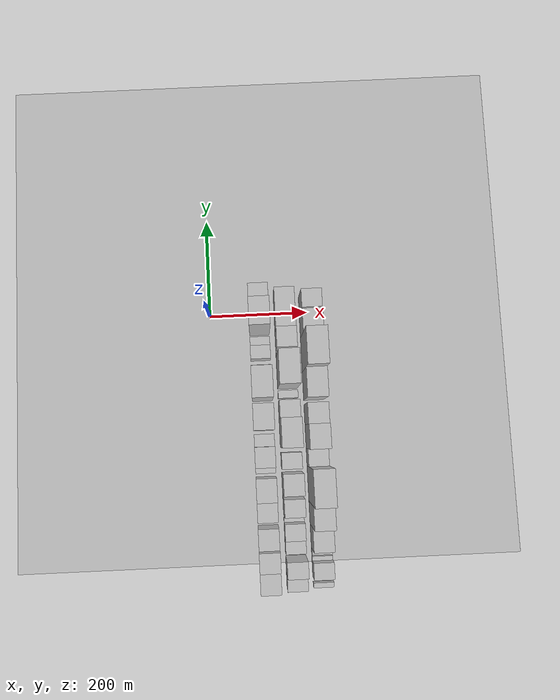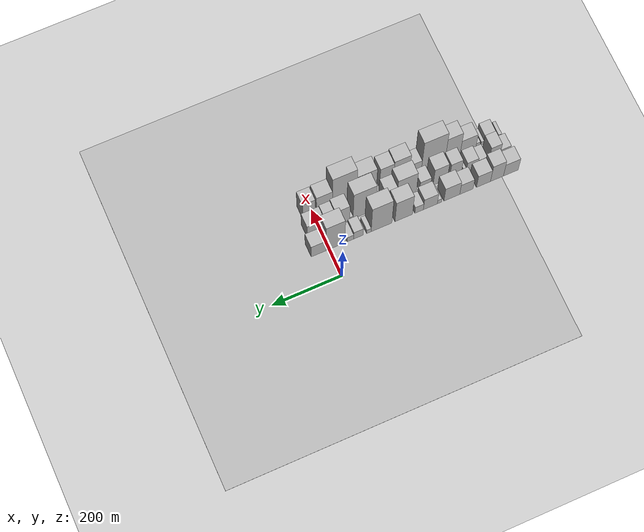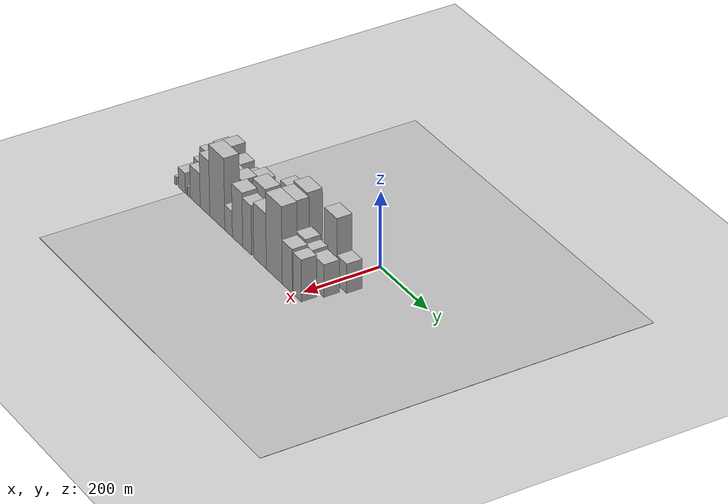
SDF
<sdf version="1.6">
 <world name="default">
  <include><name>ground_plane_1</name><uri>model://HANNAS_ground_plane</uri></include>
  <include>
   <name>ground_plane_2</name>
   <uri>model://HANNAS_ground_plane</uri>
   <pose>100 0 0  0 0 0</pose>
  </include>
  <model name="building_1">
   <static>1</static>
   <pose>100.0000 -526.1982 0 0.000000 0.000000 0.000000</pose>
   <link name="link">
    <pose>0 0 40.50 0 0 0</pose>
    <collision name="collision"><geometry><box><size>40.0000 43.6035 81.0000</size></box></geometry></collision>
    <visual name="visual">
     <cast_shadows>0</cast_shadows>
     <geometry><box><size>40.0000 43.6035 81.0000</size></box></geometry>
     <material>
      <script>
       <uri>model://HANNAS_wall/materials/scripts</uri>
       <uri>model://HANNAS_wall/materials/textures</uri>
       <name>vrc/HANNAS_wall</name>
      </script>
     </material>
    </visual>
   </link>
  </model>
  <model name="building_2">
   <static>1</static>
   <pose>100.0000 -485.3963 0 0.000000 0.000000 0.000000</pose>
   <link name="link">
    <pose>0 0 54.00 0 0 0</pose>
    <collision name="collision"><geometry><box><size>40.0000 38.0005 108.0000</size></box></geometry></collision>
    <visual name="visual">
     <cast_shadows>0</cast_shadows>
     <geometry><box><size>40.0000 38.0005 108.0000</size></box></geometry>
     <material>
      <script>
       <uri>model://HANNAS_wall/materials/scripts</uri>
       <uri>model://HANNAS_wall/materials/textures</uri>
       <name>vrc/HANNAS_wall</name>
      </script>
     </material>
    </visual>
   </link>
  </model>
  <model name="building_3">
   <static>1</static>
   <pose>100.0000 -445.8924 0 0.000000 0.000000 0.000000</pose>
   <link name="link">
    <pose>0 0 40.50 0 0 0</pose>
    <collision name="collision"><geometry><box><size>40.0000 41.0073 81.0000</size></box></geometry></collision>
    <visual name="visual">
     <cast_shadows>0</cast_shadows>
     <geometry><box><size>40.0000 41.0073 81.0000</size></box></geometry>
     <material>
      <script>
       <uri>model://HANNAS_wall/materials/scripts</uri>
       <uri>model://HANNAS_wall/materials/textures</uri>
       <name>vrc/HANNAS_wall</name>
      </script>
     </material>
    </visual>
   </link>
  </model>
  <model name="building_4">
   <static>1</static>
   <pose>100.0000 -395.8718 0 0.000000 0.000000 0.000000</pose>
   <link name="link">
    <pose>0 0 34.50 0 0 0</pose>
    <collision name="collision"><geometry><box><size>40.0000 39.0338 69.0000</size></box></geometry></collision>
    <visual name="visual">
     <cast_shadows>0</cast_shadows>
     <geometry><box><size>40.0000 39.0338 69.0000</size></box></geometry>
     <material>
      <script>
       <uri>model://HANNAS_wall/materials/scripts</uri>
       <uri>model://HANNAS_wall/materials/textures</uri>
       <name>vrc/HANNAS_wall</name>
      </script>
     </material>
    </visual>
   </link>
  </model>
  <model name="building_5">
   <static>1</static>
   <pose>100.0000 -353.2486 0 0.000000 0.000000 0.000000</pose>
   <link name="link">
    <pose>0 0 45.00 0 0 0</pose>
    <collision name="collision"><geometry><box><size>40.0000 46.2126 90.0000</size></box></geometry></collision>
    <visual name="visual">
     <cast_shadows>0</cast_shadows>
     <geometry><box><size>40.0000 46.2126 90.0000</size></box></geometry>
     <material>
      <script>
       <uri>model://HANNAS_wall/materials/scripts</uri>
       <uri>model://HANNAS_wall/materials/textures</uri>
       <name>vrc/HANNAS_wall</name>
      </script>
     </material>
    </visual>
   </link>
  </model>
  <model name="building_6">
   <static>1</static>
   <pose>100.0000 -317.0287 0 0.000000 0.000000 0.000000</pose>
   <link name="link">
    <pose>0 0 13.50 0 0 0</pose>
    <collision name="collision"><geometry><box><size>40.0000 12.2272 27.0000</size></box></geometry></collision>
    <visual name="visual">
     <cast_shadows>0</cast_shadows>
     <geometry><box><size>40.0000 12.2272 27.0000</size></box></geometry>
     <material>
      <script>
       <uri>model://HANNAS_wall/materials/scripts</uri>
       <uri>model://HANNAS_wall/materials/textures</uri>
       <name>vrc/HANNAS_wall</name>
      </script>
     </material>
    </visual>
   </link>
  </model>
  <model name="building_7">
   <static>1</static>
   <pose>100.0000 -290.6172 0 0.000000 0.000000 0.000000</pose>
   <link name="link">
    <pose>0 0 37.50 0 0 0</pose>
    <collision name="collision"><geometry><box><size>40.0000 40.5959 75.0000</size></box></geometry></collision>
    <visual name="visual">
     <cast_shadows>0</cast_shadows>
     <geometry><box><size>40.0000 40.5959 75.0000</size></box></geometry>
     <material>
      <script>
       <uri>model://HANNAS_wall/materials/scripts</uri>
       <uri>model://HANNAS_wall/materials/textures</uri>
       <name>vrc/HANNAS_wall</name>
      </script>
     </material>
    </visual>
   </link>
  </model>
  <model name="building_8">
   <static>1</static>
   <pose>100.0000 -257.9025 0 0.000000 0.000000 0.000000</pose>
   <link name="link">
    <pose>0 0 22.50 0 0 0</pose>
    <collision name="collision"><geometry><box><size>40.0000 24.8334 45.0000</size></box></geometry></collision>
    <visual name="visual">
     <cast_shadows>0</cast_shadows>
     <geometry><box><size>40.0000 24.8334 45.0000</size></box></geometry>
     <material>
      <script>
       <uri>model://HANNAS_wall/materials/scripts</uri>
       <uri>model://HANNAS_wall/materials/textures</uri>
       <name>vrc/HANNAS_wall</name>
      </script>
     </material>
    </visual>
   </link>
  </model>
  <model name="building_9">
   <static>1</static>
   <pose>100.0000 -213.2103 0 0.000000 0.000000 0.000000</pose>
   <link name="link">
    <pose>0 0 70.50 0 0 0</pose>
    <collision name="collision"><geometry><box><size>40.0000 50.5510 141.0000</size></box></geometry></collision>
    <visual name="visual">
     <cast_shadows>0</cast_shadows>
     <geometry><box><size>40.0000 50.5510 141.0000</size></box></geometry>
     <material>
      <script>
       <uri>model://HANNAS_wall/materials/scripts</uri>
       <uri>model://HANNAS_wall/materials/textures</uri>
       <name>vrc/HANNAS_wall</name>
      </script>
     </material>
    </visual>
   </link>
  </model>
  <model name="building_10">
   <static>1</static>
   <pose>100.0000 -149.0451 0 0.000000 0.000000 0.000000</pose>
   <link name="link">
    <pose>0 0 85.50 0 0 0</pose>
    <collision name="collision"><geometry><box><size>40.0000 59.7794 171.0000</size></box></geometry></collision>
    <visual name="visual">
     <cast_shadows>0</cast_shadows>
     <geometry><box><size>40.0000 59.7794 171.0000</size></box></geometry>
     <material>
      <script>
       <uri>model://HANNAS_wall/materials/scripts</uri>
       <uri>model://HANNAS_wall/materials/textures</uri>
       <name>vrc/HANNAS_wall</name>
      </script>
     </material>
    </visual>
   </link>
  </model>
  <model name="building_11">
   <static>1</static>
   <pose>100.0000 -112.6916 0 0.000000 0.000000 0.000000</pose>
   <link name="link">
    <pose>0 0 13.50 0 0 0</pose>
    <collision name="collision"><geometry><box><size>40.0000 12.9276 27.0000</size></box></geometry></collision>
    <visual name="visual">
     <cast_shadows>0</cast_shadows>
     <geometry><box><size>40.0000 12.9276 27.0000</size></box></geometry>
     <material>
      <script>
       <uri>model://HANNAS_wall/materials/scripts</uri>
       <uri>model://HANNAS_wall/materials/textures</uri>
       <name>vrc/HANNAS_wall</name>
      </script>
     </material>
    </visual>
   </link>
  </model>
  <model name="building_12">
   <static>1</static>
   <pose>100.0000 -82.6080 0 0.000000 0.000000 0.000000</pose>
   <link name="link">
    <pose>0 0 25.50 0 0 0</pose>
    <collision name="collision"><geometry><box><size>40.0000 27.2396 51.0000</size></box></geometry></collision>
    <visual name="visual">
     <cast_shadows>0</cast_shadows>
     <geometry><box><size>40.0000 27.2396 51.0000</size></box></geometry>
     <material>
      <script>
       <uri>model://HANNAS_wall/materials/scripts</uri>
       <uri>model://HANNAS_wall/materials/textures</uri>
       <name>vrc/HANNAS_wall</name>
      </script>
     </material>
    </visual>
   </link>
  </model>
  <model name="building_13">
   <static>1</static>
   <pose>100.0000 -59.3566 0 0.000000 0.000000 0.000000</pose>
   <link name="link">
    <pose>0 0 16.50 0 0 0</pose>
    <collision name="collision"><geometry><box><size>40.0000 19.2632 33.0000</size></box></geometry></collision>
    <visual name="visual">
     <cast_shadows>0</cast_shadows>
     <geometry><box><size>40.0000 19.2632 33.0000</size></box></geometry>
     <material>
      <script>
       <uri>model://HANNAS_wall/materials/scripts</uri>
       <uri>model://HANNAS_wall/materials/textures</uri>
       <name>vrc/HANNAS_wall</name>
      </script>
     </material>
    </visual>
   </link>
  </model>
  <model name="building_14">
   <static>1</static>
   <pose>100.0000 -16.7915 0 0.000000 0.000000 0.000000</pose>
   <link name="link">
    <pose>0 0 87.00 0 0 0</pose>
    <collision name="collision"><geometry><box><size>40.0000 53.8670 174.0000</size></box></geometry></collision>
    <visual name="visual">
     <cast_shadows>0</cast_shadows>
     <geometry><box><size>40.0000 53.8670 174.0000</size></box></geometry>
     <material>
      <script>
       <uri>model://HANNAS_wall/materials/scripts</uri>
       <uri>model://HANNAS_wall/materials/textures</uri>
       <name>vrc/HANNAS_wall</name>
      </script>
     </material>
    </visual>
   </link>
  </model>
  <model name="building_15">
   <static>1</static>
   <pose>100.0000 31.6041 0 0.000000 0.000000 0.000000</pose>
   <link name="link">
    <pose>0 0 39.00 0 0 0</pose>
    <collision name="collision"><geometry><box><size>40.0000 42.9242 78.0000</size></box></geometry></collision>
    <visual name="visual">
     <cast_shadows>0</cast_shadows>
     <geometry><box><size>40.0000 42.9242 78.0000</size></box></geometry>
     <material>
      <script>
       <uri>model://HANNAS_wall/materials/scripts</uri>
       <uri>model://HANNAS_wall/materials/textures</uri>
       <name>vrc/HANNAS_wall</name>
      </script>
     </material>
    </visual>
   </link>
  </model>
  <model name="building_31">
   <static>1</static>
   <pose>152.0000 -532.8554 0 0.000000 0.000000 0.000000</pose>
   <link name="link">
    <pose>0 0 27.00 0 0 0</pose>
    <collision name="collision"><geometry><box><size>40.0000 30.2892 54.0000</size></box></geometry></collision>
    <visual name="visual">
     <cast_shadows>0</cast_shadows>
     <geometry><box><size>40.0000 30.2892 54.0000</size></box></geometry>
     <material>
      <script>
       <uri>model://HANNAS_wall/materials/scripts</uri>
       <uri>model://HANNAS_wall/materials/textures</uri>
       <name>vrc/HANNAS_wall</name>
      </script>
     </material>
    </visual>
   </link>
  </model>
  <model name="building_32">
   <static>1</static>
   <pose>152.0000 -502.0154 0 0.000000 0.000000 0.000000</pose>
   <link name="link">
    <pose>0 0 49.50 0 0 0</pose>
    <collision name="collision"><geometry><box><size>40.0000 31.3909 99.0000</size></box></geometry></collision>
    <visual name="visual">
     <cast_shadows>0</cast_shadows>
     <geometry><box><size>40.0000 31.3909 99.0000</size></box></geometry>
     <material>
      <script>
       <uri>model://HANNAS_wall/materials/scripts</uri>
       <uri>model://HANNAS_wall/materials/textures</uri>
       <name>vrc/HANNAS_wall</name>
      </script>
     </material>
    </visual>
   </link>
  </model>
  <model name="building_33">
   <static>1</static>
   <pose>152.0000 -466.1909 0 0.000000 0.000000 0.000000</pose>
   <link name="link">
    <pose>0 0 22.50 0 0 0</pose>
    <collision name="collision"><geometry><box><size>40.0000 26.2582 45.0000</size></box></geometry></collision>
    <visual name="visual">
     <cast_shadows>0</cast_shadows>
     <geometry><box><size>40.0000 26.2582 45.0000</size></box></geometry>
     <material>
      <script>
       <uri>model://HANNAS_wall/materials/scripts</uri>
       <uri>model://HANNAS_wall/materials/textures</uri>
       <name>vrc/HANNAS_wall</name>
      </script>
     </material>
    </visual>
   </link>
  </model>
  <model name="building_34">
   <static>1</static>
   <pose>152.0000 -436.7040 0 0.000000 0.000000 0.000000</pose>
   <link name="link">
    <pose>0 0 30.00 0 0 0</pose>
    <collision name="collision"><geometry><box><size>40.0000 32.7156 60.0000</size></box></geometry></collision>
    <visual name="visual">
     <cast_shadows>0</cast_shadows>
     <geometry><box><size>40.0000 32.7156 60.0000</size></box></geometry>
     <material>
      <script>
       <uri>model://HANNAS_wall/materials/scripts</uri>
       <uri>model://HANNAS_wall/materials/textures</uri>
       <name>vrc/HANNAS_wall</name>
      </script>
     </material>
    </visual>
   </link>
  </model>
  <model name="building_35">
   <static>1</static>
   <pose>152.0000 -416.1719 0 0.000000 0.000000 0.000000</pose>
   <link name="link">
    <pose>0 0 9.00 0 0 0</pose>
    <collision name="collision"><geometry><box><size>40.0000 8.3486 18.0000</size></box></geometry></collision>
    <visual name="visual">
     <cast_shadows>0</cast_shadows>
     <geometry><box><size>40.0000 8.3486 18.0000</size></box></geometry>
     <material>
      <script>
       <uri>model://HANNAS_wall/materials/scripts</uri>
       <uri>model://HANNAS_wall/materials/textures</uri>
       <name>vrc/HANNAS_wall</name>
      </script>
     </material>
    </visual>
   </link>
  </model>
  <model name="building_36">
   <static>1</static>
   <pose>152.0000 -387.9313 0 0.000000 0.000000 0.000000</pose>
   <link name="link">
    <pose>0 0 49.50 0 0 0</pose>
    <collision name="collision"><geometry><box><size>40.0000 34.1327 99.0000</size></box></geometry></collision>
    <visual name="visual">
     <cast_shadows>0</cast_shadows>
     <geometry><box><size>40.0000 34.1327 99.0000</size></box></geometry>
     <material>
      <script>
       <uri>model://HANNAS_wall/materials/scripts</uri>
       <uri>model://HANNAS_wall/materials/textures</uri>
       <name>vrc/HANNAS_wall</name>
      </script>
     </material>
    </visual>
   </link>
  </model>
  <model name="building_37">
   <static>1</static>
   <pose>152.0000 -367.6337 0 0.000000 0.000000 0.000000</pose>
   <link name="link">
    <pose>0 0 7.50 0 0 0</pose>
    <collision name="collision"><geometry><box><size>40.0000 6.4623 15.0000</size></box></geometry></collision>
    <visual name="visual">
     <cast_shadows>0</cast_shadows>
     <geometry><box><size>40.0000 6.4623 15.0000</size></box></geometry>
     <material>
      <script>
       <uri>model://HANNAS_wall/materials/scripts</uri>
       <uri>model://HANNAS_wall/materials/textures</uri>
       <name>vrc/HANNAS_wall</name>
      </script>
     </material>
    </visual>
   </link>
  </model>
  <model name="building_38">
   <static>1</static>
   <pose>152.0000 -343.5405 0 0.000000 0.000000 0.000000</pose>
   <link name="link">
    <pose>0 0 55.50 0 0 0</pose>
    <collision name="collision"><geometry><box><size>40.0000 41.7241 111.0000</size></box></geometry></collision>
    <visual name="visual">
     <cast_shadows>0</cast_shadows>
     <geometry><box><size>40.0000 41.7241 111.0000</size></box></geometry>
     <material>
      <script>
       <uri>model://HANNAS_wall/materials/scripts</uri>
       <uri>model://HANNAS_wall/materials/textures</uri>
       <name>vrc/HANNAS_wall</name>
      </script>
     </material>
    </visual>
   </link>
  </model>
  <model name="building_39">
   <static>1</static>
   <pose>152.0000 -299.5577 0 0.000000 0.000000 0.000000</pose>
   <link name="link">
    <pose>0 0 31.50 0 0 0</pose>
    <collision name="collision"><geometry><box><size>40.0000 32.2414 63.0000</size></box></geometry></collision>
    <visual name="visual">
     <cast_shadows>0</cast_shadows>
     <geometry><box><size>40.0000 32.2414 63.0000</size></box></geometry>
     <material>
      <script>
       <uri>model://HANNAS_wall/materials/scripts</uri>
       <uri>model://HANNAS_wall/materials/textures</uri>
       <name>vrc/HANNAS_wall</name>
      </script>
     </material>
    </visual>
   </link>
  </model>
  <model name="building_40">
   <static>1</static>
   <pose>152.0000 -245.1014 0 0.000000 0.000000 0.000000</pose>
   <link name="link">
    <pose>0 0 72.00 0 0 0</pose>
    <collision name="collision"><geometry><box><size>40.0000 56.6713 144.0000</size></box></geometry></collision>
    <visual name="visual">
     <cast_shadows>0</cast_shadows>
     <geometry><box><size>40.0000 56.6713 144.0000</size></box></geometry>
     <material>
      <script>
       <uri>model://HANNAS_wall/materials/scripts</uri>
       <uri>model://HANNAS_wall/materials/textures</uri>
       <name>vrc/HANNAS_wall</name>
      </script>
     </material>
    </visual>
   </link>
  </model>
  <model name="building_41">
   <static>1</static>
   <pose>152.0000 -199.3753 0 0.000000 0.000000 0.000000</pose>
   <link name="link">
    <pose>0 0 51.00 0 0 0</pose>
    <collision name="collision"><geometry><box><size>40.0000 34.7810 102.0000</size></box></geometry></collision>
    <visual name="visual">
     <cast_shadows>0</cast_shadows>
     <geometry><box><size>40.0000 34.7810 102.0000</size></box></geometry>
     <material>
      <script>
       <uri>model://HANNAS_wall/materials/scripts</uri>
       <uri>model://HANNAS_wall/materials/textures</uri>
       <name>vrc/HANNAS_wall</name>
      </script>
     </material>
    </visual>
   </link>
  </model>
  <model name="building_42">
   <static>1</static>
   <pose>152.0000 -168.0326 0 0.000000 0.000000 0.000000</pose>
   <link name="link">
    <pose>0 0 15.00 0 0 0</pose>
    <collision name="collision"><geometry><box><size>40.0000 15.9043 30.0000</size></box></geometry></collision>
    <visual name="visual">
     <cast_shadows>0</cast_shadows>
     <geometry><box><size>40.0000 15.9043 30.0000</size></box></geometry>
     <material>
      <script>
       <uri>model://HANNAS_wall/materials/scripts</uri>
       <uri>model://HANNAS_wall/materials/textures</uri>
       <name>vrc/HANNAS_wall</name>
      </script>
     </material>
    </visual>
   </link>
  </model>
  <model name="building_43">
   <static>1</static>
   <pose>152.0000 -123.2898 0 0.000000 0.000000 0.000000</pose>
   <link name="link">
    <pose>0 0 90.00 0 0 0</pose>
    <collision name="collision"><geometry><box><size>40.0000 65.5813 180.0000</size></box></geometry></collision>
    <visual name="visual">
     <cast_shadows>0</cast_shadows>
     <geometry><box><size>40.0000 65.5813 180.0000</size></box></geometry>
     <material>
      <script>
       <uri>model://HANNAS_wall/materials/scripts</uri>
       <uri>model://HANNAS_wall/materials/textures</uri>
       <name>vrc/HANNAS_wall</name>
      </script>
     </material>
    </visual>
   </link>
  </model>
  <model name="building_44">
   <static>1</static>
   <pose>152.0000 -85.5700 0 0.000000 0.000000 0.000000</pose>
   <link name="link">
    <pose>0 0 10.50 0 0 0</pose>
    <collision name="collision"><geometry><box><size>40.0000 9.8583 21.0000</size></box></geometry></collision>
    <visual name="visual">
     <cast_shadows>0</cast_shadows>
     <geometry><box><size>40.0000 9.8583 21.0000</size></box></geometry>
     <material>
      <script>
       <uri>model://HANNAS_wall/materials/scripts</uri>
       <uri>model://HANNAS_wall/materials/textures</uri>
       <name>vrc/HANNAS_wall</name>
      </script>
     </material>
    </visual>
   </link>
  </model>
  <model name="building_45">
   <static>1</static>
   <pose>152.0000 -60.3134 0 0.000000 0.000000 0.000000</pose>
   <link name="link">
    <pose>0 0 54.00 0 0 0</pose>
    <collision name="collision"><geometry><box><size>40.0000 40.6549 108.0000</size></box></geometry></collision>
    <visual name="visual">
     <cast_shadows>0</cast_shadows>
     <geometry><box><size>40.0000 40.6549 108.0000</size></box></geometry>
     <material>
      <script>
       <uri>model://HANNAS_wall/materials/scripts</uri>
       <uri>model://HANNAS_wall/materials/textures</uri>
       <name>vrc/HANNAS_wall</name>
      </script>
     </material>
    </visual>
   </link>
  </model>
  <model name="building_46">
   <static>1</static>
   <pose>152.0000 -24.6356 0 0.000000 0.000000 0.000000</pose>
   <link name="link">
    <pose>0 0 48.00 0 0 0</pose>
    <collision name="collision"><geometry><box><size>40.0000 30.7005 96.0000</size></box></geometry></collision>
    <visual name="visual">
     <cast_shadows>0</cast_shadows>
     <geometry><box><size>40.0000 30.7005 96.0000</size></box></geometry>
     <material>
      <script>
       <uri>model://HANNAS_wall/materials/scripts</uri>
       <uri>model://HANNAS_wall/materials/textures</uri>
       <name>vrc/HANNAS_wall</name>
      </script>
     </material>
    </visual>
   </link>
  </model>
  <model name="building_47">
   <static>1</static>
   <pose>152.0000 15.9522 0 0.000000 0.000000 0.000000</pose>
   <link name="link">
    <pose>0 0 43.50 0 0 0</pose>
    <collision name="collision"><geometry><box><size>40.0000 50.4752 87.0000</size></box></geometry></collision>
    <visual name="visual">
     <cast_shadows>0</cast_shadows>
     <geometry><box><size>40.0000 50.4752 87.0000</size></box></geometry>
     <material>
      <script>
       <uri>model://HANNAS_wall/materials/scripts</uri>
       <uri>model://HANNAS_wall/materials/textures</uri>
       <name>vrc/HANNAS_wall</name>
      </script>
     </material>
    </visual>
   </link>
  </model>
  <model name="building_64">
   <static>1</static>
   <pose>204.0000 -543.3043 0 0.000000 0.000000 0.000000</pose>
   <link name="link">
    <pose>0 0 10.50 0 0 0</pose>
    <collision name="collision"><geometry><box><size>40.0000 9.3913 21.0000</size></box></geometry></collision>
    <visual name="visual">
     <cast_shadows>0</cast_shadows>
     <geometry><box><size>40.0000 9.3913 21.0000</size></box></geometry>
     <material>
      <script>
       <uri>model://HANNAS_wall/materials/scripts</uri>
       <uri>model://HANNAS_wall/materials/textures</uri>
       <name>vrc/HANNAS_wall</name>
      </script>
     </material>
    </visual>
   </link>
  </model>
  <model name="building_65">
   <static>1</static>
   <pose>204.0000 -512.5087 0 0.000000 0.000000 0.000000</pose>
   <link name="link">
    <pose>0 0 27.00 0 0 0</pose>
    <collision name="collision"><geometry><box><size>40.0000 32.1999 54.0000</size></box></geometry></collision>
    <visual name="visual">
     <cast_shadows>0</cast_shadows>
     <geometry><box><size>40.0000 32.1999 54.0000</size></box></geometry>
     <material>
      <script>
       <uri>model://HANNAS_wall/materials/scripts</uri>
       <uri>model://HANNAS_wall/materials/textures</uri>
       <name>vrc/HANNAS_wall</name>
      </script>
     </material>
    </visual>
   </link>
  </model>
  <model name="building_66">
   <static>1</static>
   <pose>204.0000 -492.1526 0 0.000000 0.000000 0.000000</pose>
   <link name="link">
    <pose>0 0 10.50 0 0 0</pose>
    <collision name="collision"><geometry><box><size>40.0000 8.5123 21.0000</size></box></geometry></collision>
    <visual name="visual">
     <cast_shadows>0</cast_shadows>
     <geometry><box><size>40.0000 8.5123 21.0000</size></box></geometry>
     <material>
      <script>
       <uri>model://HANNAS_wall/materials/scripts</uri>
       <uri>model://HANNAS_wall/materials/textures</uri>
       <name>vrc/HANNAS_wall</name>
      </script>
     </material>
    </visual>
   </link>
  </model>
  <model name="building_67">
   <static>1</static>
   <pose>204.0000 -478.8380 0 0.000000 0.000000 0.000000</pose>
   <link name="link">
    <pose>0 0 13.50 0 0 0</pose>
    <collision name="collision"><geometry><box><size>40.0000 12.1171 27.0000</size></box></geometry></collision>
    <visual name="visual">
     <cast_shadows>0</cast_shadows>
     <geometry><box><size>40.0000 12.1171 27.0000</size></box></geometry>
     <material>
      <script>
       <uri>model://HANNAS_wall/materials/scripts</uri>
       <uri>model://HANNAS_wall/materials/textures</uri>
       <name>vrc/HANNAS_wall</name>
      </script>
     </material>
    </visual>
   </link>
  </model>
  <model name="building_68">
   <static>1</static>
   <pose>204.0000 -449.6400 0 0.000000 0.000000 0.000000</pose>
   <link name="link">
    <pose>0 0 45.00 0 0 0</pose>
    <collision name="collision"><geometry><box><size>40.0000 46.2788 90.0000</size></box></geometry></collision>
    <visual name="visual">
     <cast_shadows>0</cast_shadows>
     <geometry><box><size>40.0000 46.2788 90.0000</size></box></geometry>
     <material>
      <script>
       <uri>model://HANNAS_wall/materials/scripts</uri>
       <uri>model://HANNAS_wall/materials/textures</uri>
       <name>vrc/HANNAS_wall</name>
      </script>
     </material>
    </visual>
   </link>
  </model>
  <model name="building_69">
   <static>1</static>
   <pose>204.0000 -404.2523 0 0.000000 0.000000 0.000000</pose>
   <link name="link">
    <pose>0 0 73.50 0 0 0</pose>
    <collision name="collision"><geometry><box><size>40.0000 44.4967 147.0000</size></box></geometry></collision>
    <visual name="visual">
     <cast_shadows>0</cast_shadows>
     <geometry><box><size>40.0000 44.4967 147.0000</size></box></geometry>
     <material>
      <script>
       <uri>model://HANNAS_wall/materials/scripts</uri>
       <uri>model://HANNAS_wall/materials/textures</uri>
       <name>vrc/HANNAS_wall</name>
      </script>
     </material>
    </visual>
   </link>
  </model>
  <model name="building_70">
   <static>1</static>
   <pose>204.0000 -347.2621 0 0.000000 0.000000 0.000000</pose>
   <link name="link">
    <pose>0 0 96.00 0 0 0</pose>
    <collision name="collision"><geometry><box><size>40.0000 69.4836 192.0000</size></box></geometry></collision>
    <visual name="visual">
     <cast_shadows>0</cast_shadows>
     <geometry><box><size>40.0000 69.4836 192.0000</size></box></geometry>
     <material>
      <script>
       <uri>model://HANNAS_wall/materials/scripts</uri>
       <uri>model://HANNAS_wall/materials/textures</uri>
       <name>vrc/HANNAS_wall</name>
      </script>
     </material>
    </visual>
   </link>
  </model>
  <model name="building_71">
   <static>1</static>
   <pose>204.0000 -295.2353 0 0.000000 0.000000 0.000000</pose>
   <link name="link">
    <pose>0 0 34.50 0 0 0</pose>
    <collision name="collision"><geometry><box><size>40.0000 34.5700 69.0000</size></box></geometry></collision>
    <visual name="visual">
     <cast_shadows>0</cast_shadows>
     <geometry><box><size>40.0000 34.5700 69.0000</size></box></geometry>
     <material>
      <script>
       <uri>model://HANNAS_wall/materials/scripts</uri>
       <uri>model://HANNAS_wall/materials/textures</uri>
       <name>vrc/HANNAS_wall</name>
      </script>
     </material>
    </visual>
   </link>
  </model>
  <model name="building_72">
   <static>1</static>
   <pose>204.0000 -254.2854 0 0.000000 0.000000 0.000000</pose>
   <link name="link">
    <pose>0 0 72.00 0 0 0</pose>
    <collision name="collision"><geometry><box><size>40.0000 47.3298 144.0000</size></box></geometry></collision>
    <visual name="visual">
     <cast_shadows>0</cast_shadows>
     <geometry><box><size>40.0000 47.3298 144.0000</size></box></geometry>
     <material>
      <script>
       <uri>model://HANNAS_wall/materials/scripts</uri>
       <uri>model://HANNAS_wall/materials/textures</uri>
       <name>vrc/HANNAS_wall</name>
      </script>
     </material>
    </visual>
   </link>
  </model>
  <model name="building_73">
   <static>1</static>
   <pose>204.0000 -210.4198 0 0.000000 0.000000 0.000000</pose>
   <link name="link">
    <pose>0 0 66.00 0 0 0</pose>
    <collision name="collision"><geometry><box><size>40.0000 40.4013 132.0000</size></box></geometry></collision>
    <visual name="visual">
     <cast_shadows>0</cast_shadows>
     <geometry><box><size>40.0000 40.4013 132.0000</size></box></geometry>
     <material>
      <script>
       <uri>model://HANNAS_wall/materials/scripts</uri>
       <uri>model://HANNAS_wall/materials/textures</uri>
       <name>vrc/HANNAS_wall</name>
      </script>
     </material>
    </visual>
   </link>
  </model>
  <model name="building_74">
   <static>1</static>
   <pose>204.0000 -152.7067 0 0.000000 0.000000 0.000000</pose>
   <link name="link">
    <pose>0 0 73.50 0 0 0</pose>
    <collision name="collision"><geometry><box><size>40.0000 57.0249 147.0000</size></box></geometry></collision>
    <visual name="visual">
     <cast_shadows>0</cast_shadows>
     <geometry><box><size>40.0000 57.0249 147.0000</size></box></geometry>
     <material>
      <script>
       <uri>model://HANNAS_wall/materials/scripts</uri>
       <uri>model://HANNAS_wall/materials/textures</uri>
       <name>vrc/HANNAS_wall</name>
      </script>
     </material>
    </visual>
   </link>
  </model>
  <model name="building_75">
   <static>1</static>
   <pose>204.0000 -89.0440 0 0.000000 0.000000 0.000000</pose>
   <link name="link">
    <pose>0 0 102.00 0 0 0</pose>
    <collision name="collision"><geometry><box><size>40.0000 70.3006 204.0000</size></box></geometry></collision>
    <visual name="visual">
     <cast_shadows>0</cast_shadows>
     <geometry><box><size>40.0000 70.3006 204.0000</size></box></geometry>
     <material>
      <script>
       <uri>model://HANNAS_wall/materials/scripts</uri>
       <uri>model://HANNAS_wall/materials/textures</uri>
       <name>vrc/HANNAS_wall</name>
      </script>
     </material>
    </visual>
   </link>
  </model>
  <model name="building_76">
   <static>1</static>
   <pose>204.0000 -31.0954 0 0.000000 0.000000 0.000000</pose>
   <link name="link">
    <pose>0 0 58.50 0 0 0</pose>
    <collision name="collision"><geometry><box><size>40.0000 45.5964 117.0000</size></box></geometry></collision>
    <visual name="visual">
     <cast_shadows>0</cast_shadows>
     <geometry><box><size>40.0000 45.5964 117.0000</size></box></geometry>
     <material>
      <script>
       <uri>model://HANNAS_wall/materials/scripts</uri>
       <uri>model://HANNAS_wall/materials/textures</uri>
       <name>vrc/HANNAS_wall</name>
      </script>
     </material>
    </visual>
   </link>
  </model>
  <model name="building_77">
   <static>1</static>
   <pose>204.0000 12.9429 0 0.000000 0.000000 0.000000</pose>
   <link name="link">
    <pose>0 0 55.50 0 0 0</pose>
    <collision name="collision"><geometry><box><size>40.0000 36.4802 111.0000</size></box></geometry></collision>
    <visual name="visual">
     <cast_shadows>0</cast_shadows>
     <geometry><box><size>40.0000 36.4802 111.0000</size></box></geometry>
     <material>
      <script>
       <uri>model://HANNAS_wall/materials/scripts</uri>
       <uri>model://HANNAS_wall/materials/textures</uri>
       <name>vrc/HANNAS_wall</name>
      </script>
     </material>
    </visual>
   </link>
  </model>
 </world>
</sdf>
